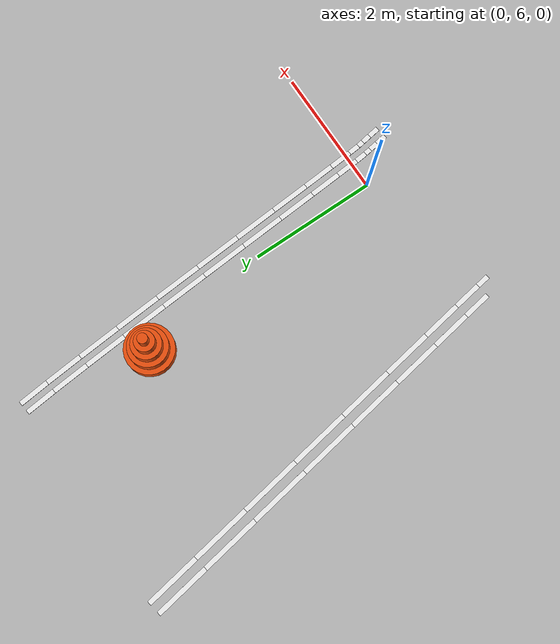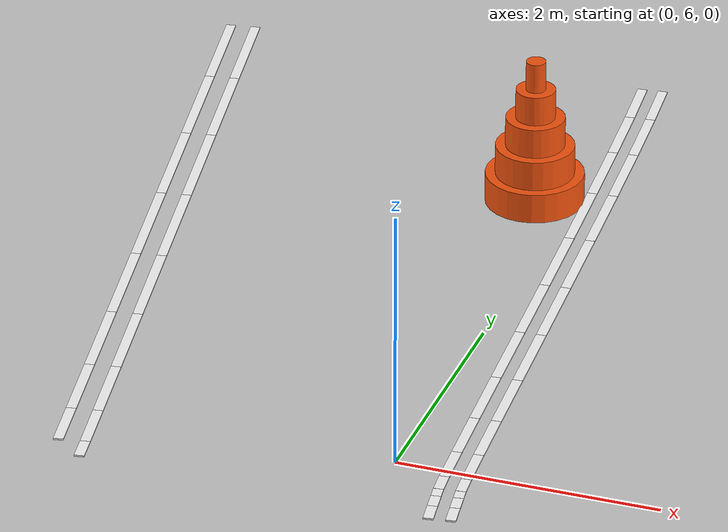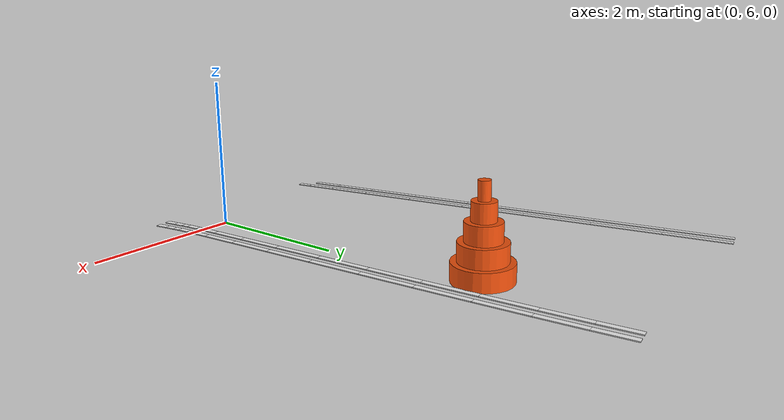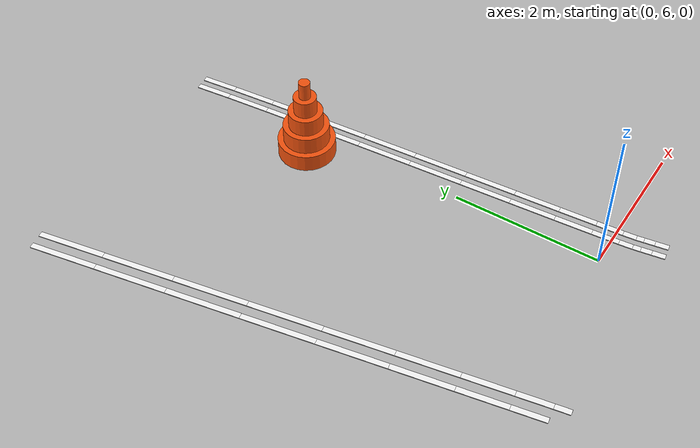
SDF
<sdf version="1.9">
 <world name="igvc_competition">
  <model name="Line_001_0176">
   <static>1</static>
   <pose>-3.2469 11.6573 0.011 0 0 -1.403442</pose>
   <link name="link">
    <visual name="visual">
     <geometry><box><size>0.9095 0.0762 0.012</size></box></geometry>
     <material>
      <ambient>0.98 0.98 0.98 1</ambient>
      <diffuse>0.98 0.98 0.98 1</diffuse>
      <specular>0.05 0.05 0.05 1</specular>
      <emissive>0.9 0.9 0.9 1</emissive>
     </material>
    </visual>
   </link>
  </model>
  <model name="Line_001_0177">
   <static>1</static>
   <pose>-3.4441 11.6240 0.011 0 0 -1.403334</pose>
   <link name="link">
    <visual name="visual">
     <geometry><box><size>0.9095 0.0762 0.012</size></box></geometry>
     <material>
      <ambient>0.98 0.98 0.98 1</ambient>
      <diffuse>0.98 0.98 0.98 1</diffuse>
      <specular>0.05 0.05 0.05 1</specular>
      <emissive>0.9 0.9 0.9 1</emissive>
     </material>
    </visual>
   </link>
  </model>
  <model name="Line_001_0178">
   <static>1</static>
   <pose>-3.0896 10.7271 0.011 0 0 -1.403107</pose>
   <link name="link">
    <visual name="visual">
     <geometry><box><size>0.9772 0.0762 0.012</size></box></geometry>
     <material>
      <ambient>0.98 0.98 0.98 1</ambient>
      <diffuse>0.98 0.98 0.98 1</diffuse>
      <specular>0.05 0.05 0.05 1</specular>
      <emissive>0.9 0.9 0.9 1</emissive>
     </material>
    </visual>
   </link>
  </model>
  <model name="Line_001_0179">
   <static>1</static>
   <pose>-3.2868 10.6938 0.011 0 0 -1.403124</pose>
   <link name="link">
    <visual name="visual">
     <geometry><box><size>0.9773 0.0762 0.012</size></box></geometry>
     <material>
      <ambient>0.98 0.98 0.98 1</ambient>
      <diffuse>0.98 0.98 0.98 1</diffuse>
      <specular>0.05 0.05 0.05 1</specular>
      <emissive>0.9 0.9 0.9 1</emissive>
     </material>
    </visual>
   </link>
  </model>
  <model name="Line_001_0180">
   <static>1</static>
   <pose>-2.9245 9.7522 0.011 0 0 -1.403002</pose>
   <link name="link">
    <visual name="visual">
     <geometry><box><size>1.0006 0.0762 0.012</size></box></geometry>
     <material>
      <ambient>0.98 0.98 0.98 1</ambient>
      <diffuse>0.98 0.98 0.98 1</diffuse>
      <specular>0.05 0.05 0.05 1</specular>
      <emissive>0.9 0.9 0.9 1</emissive>
     </material>
    </visual>
   </link>
  </model>
  <model name="Line_001_0181">
   <static>1</static>
   <pose>-3.1216 9.7188 0.011 0 0 -1.403002</pose>
   <link name="link">
    <visual name="visual">
     <geometry><box><size>1.0006 0.0762 0.012</size></box></geometry>
     <material>
      <ambient>0.98 0.98 0.98 1</ambient>
      <diffuse>0.98 0.98 0.98 1</diffuse>
      <specular>0.05 0.05 0.05 1</specular>
      <emissive>0.9 0.9 0.9 1</emissive>
     </material>
    </visual>
   </link>
  </model>
  <model name="Line_001_0182">
   <static>1</static>
   <pose>-2.7591 8.7761 0.011 0 0 -1.403063</pose>
   <link name="link">
    <visual name="visual">
     <geometry><box><size>0.9793 0.0762 0.012</size></box></geometry>
     <material>
      <ambient>0.98 0.98 0.98 1</ambient>
      <diffuse>0.98 0.98 0.98 1</diffuse>
      <specular>0.05 0.05 0.05 1</specular>
      <emissive>0.9 0.9 0.9 1</emissive>
     </material>
    </visual>
   </link>
  </model>
  <model name="Line_001_0183">
   <static>1</static>
   <pose>-2.9563 8.7427 0.011 0 0 -1.402962</pose>
   <link name="link">
    <visual name="visual">
     <geometry><box><size>0.9794 0.0762 0.012</size></box></geometry>
     <material>
      <ambient>0.98 0.98 0.98 1</ambient>
      <diffuse>0.98 0.98 0.98 1</diffuse>
      <specular>0.05 0.05 0.05 1</specular>
      <emissive>0.9 0.9 0.9 1</emissive>
     </material>
    </visual>
   </link>
  </model>
  <model name="Line_001_0184">
   <static>1</static>
   <pose>-2.6012 7.8430 0.011 0 0 -1.403074</pose>
   <link name="link">
    <visual name="visual">
     <geometry><box><size>0.9135 0.0762 0.012</size></box></geometry>
     <material>
      <ambient>0.98 0.98 0.98 1</ambient>
      <diffuse>0.98 0.98 0.98 1</diffuse>
      <specular>0.05 0.05 0.05 1</specular>
      <emissive>0.9 0.9 0.9 1</emissive>
     </material>
    </visual>
   </link>
  </model>
  <model name="Line_001_0185">
   <static>1</static>
   <pose>-2.7983 7.8095 0.011 0 0 -1.403182</pose>
   <link name="link">
    <visual name="visual">
     <geometry><box><size>0.9135 0.0762 0.012</size></box></geometry>
     <material>
      <ambient>0.98 0.98 0.98 1</ambient>
      <diffuse>0.98 0.98 0.98 1</diffuse>
      <specular>0.05 0.05 0.05 1</specular>
      <emissive>0.9 0.9 0.9 1</emissive>
     </material>
    </visual>
   </link>
  </model>
  <model name="Line_001_0186">
   <static>1</static>
   <pose>-2.4580 6.9966 0.011 0 0 -1.403458</pose>
   <link name="link">
    <visual name="visual">
     <geometry><box><size>0.8033 0.0762 0.012</size></box></geometry>
     <material>
      <ambient>0.98 0.98 0.98 1</ambient>
      <diffuse>0.98 0.98 0.98 1</diffuse>
      <specular>0.05 0.05 0.05 1</specular>
      <emissive>0.9 0.9 0.9 1</emissive>
     </material>
    </visual>
   </link>
  </model>
  <model name="Line_001_0187">
   <static>1</static>
   <pose>-2.6553 6.9632 0.011 0 0 -1.403560</pose>
   <link name="link">
    <visual name="visual">
     <geometry><box><size>0.8032 0.0762 0.012</size></box></geometry>
     <material>
      <ambient>0.98 0.98 0.98 1</ambient>
      <diffuse>0.98 0.98 0.98 1</diffuse>
      <specular>0.05 0.05 0.05 1</specular>
      <emissive>0.9 0.9 0.9 1</emissive>
     </material>
    </visual>
   </link>
  </model>
  <model name="Line_001_0188">
   <static>1</static>
   <pose>-2.3373 6.2806 0.011 0 0 -1.404304</pose>
   <link name="link">
    <visual name="visual">
     <geometry><box><size>0.6487 0.0762 0.012</size></box></geometry>
     <material>
      <ambient>0.98 0.98 0.98 1</ambient>
      <diffuse>0.98 0.98 0.98 1</diffuse>
      <specular>0.05 0.05 0.05 1</specular>
      <emissive>0.9 0.9 0.9 1</emissive>
     </material>
    </visual>
   </link>
  </model>
  <model name="Line_001_0189">
   <static>1</static>
   <pose>-2.5346 6.2475 0.011 0 0 -1.404076</pose>
   <link name="link">
    <visual name="visual">
     <geometry><box><size>0.6484 0.0762 0.012</size></box></geometry>
     <material>
      <ambient>0.98 0.98 0.98 1</ambient>
      <diffuse>0.98 0.98 0.98 1</diffuse>
      <specular>0.05 0.05 0.05 1</specular>
      <emissive>0.9 0.9 0.9 1</emissive>
     </material>
    </visual>
   </link>
  </model>
  <model name="Line_001_0190">
   <static>1</static>
   <pose>-2.2466 5.7390 0.011 0 0 -1.405684</pose>
   <link name="link">
    <visual name="visual">
     <geometry><box><size>0.4496 0.0762 0.012</size></box></geometry>
     <material>
      <ambient>0.98 0.98 0.98 1</ambient>
      <diffuse>0.98 0.98 0.98 1</diffuse>
      <specular>0.05 0.05 0.05 1</specular>
      <emissive>0.9 0.9 0.9 1</emissive>
     </material>
    </visual>
   </link>
  </model>
  <model name="Line_001_0191">
   <static>1</static>
   <pose>-2.4440 5.7065 0.011 0 0 -1.405831</pose>
   <link name="link">
    <visual name="visual">
     <geometry><box><size>0.4488 0.0762 0.012</size></box></geometry>
     <material>
      <ambient>0.98 0.98 0.98 1</ambient>
      <diffuse>0.98 0.98 0.98 1</diffuse>
      <specular>0.05 0.05 0.05 1</specular>
      <emissive>0.9 0.9 0.9 1</emissive>
     </material>
    </visual>
   </link>
  </model>
  <model name="Line_001_0192">
   <static>1</static>
   <pose>-2.1934 5.4154 0.011 0 0 -1.412256</pose>
   <link name="link">
    <visual name="visual">
     <geometry><box><size>0.2065 0.0762 0.012</size></box></geometry>
     <material>
      <ambient>0.98 0.98 0.98 1</ambient>
      <diffuse>0.98 0.98 0.98 1</diffuse>
      <specular>0.05 0.05 0.05 1</specular>
      <emissive>0.9 0.9 0.9 1</emissive>
     </material>
    </visual>
   </link>
  </model>
  <model name="Line_002_0172">
   <static>1</static>
   <pose>0.1388 11.8744 0.011 0 0 -1.472804</pose>
   <link name="link">
    <visual name="visual">
     <geometry><box><size>0.4927 0.0762 0.012</size></box></geometry>
     <material>
      <ambient>0.98 0.98 0.98 1</ambient>
      <diffuse>0.98 0.98 0.98 1</diffuse>
      <specular>0.05 0.05 0.05 1</specular>
      <emissive>0.9 0.9 0.9 1</emissive>
     </material>
    </visual>
   </link>
  </model>
  <model name="Line_002_0173">
   <static>1</static>
   <pose>-0.0237 11.8572 0.011 0 0 -1.472774</pose>
   <link name="link">
    <visual name="visual">
     <geometry><box><size>0.4894 0.0762 0.012</size></box></geometry>
     <material>
      <ambient>0.98 0.98 0.98 1</ambient>
      <diffuse>0.98 0.98 0.98 1</diffuse>
      <specular>0.05 0.05 0.05 1</specular>
      <emissive>0.9 0.9 0.9 1</emissive>
     </material>
    </visual>
   </link>
  </model>
  <model name="Line_002_0174">
   <static>1</static>
   <pose>0.1885 11.3260 0.011 0 0 -1.486769</pose>
   <link name="link">
    <visual name="visual">
     <geometry><box><size>0.6088 0.0762 0.012</size></box></geometry>
     <material>
      <ambient>0.98 0.98 0.98 1</ambient>
      <diffuse>0.98 0.98 0.98 1</diffuse>
      <specular>0.05 0.05 0.05 1</specular>
      <emissive>0.9 0.9 0.9 1</emissive>
     </material>
    </visual>
   </link>
  </model>
  <model name="Line_002_0175">
   <static>1</static>
   <pose>0.0258 11.3111 0.011 0 0 -1.486698</pose>
   <link name="link">
    <visual name="visual">
     <geometry><box><size>0.6071 0.0762 0.012</size></box></geometry>
     <material>
      <ambient>0.98 0.98 0.98 1</ambient>
      <diffuse>0.98 0.98 0.98 1</diffuse>
      <specular>0.05 0.05 0.05 1</specular>
      <emissive>0.9 0.9 0.9 1</emissive>
     </material>
    </visual>
   </link>
  </model>
  <model name="Line_002_0176">
   <static>1</static>
   <pose>0.2404 10.6774 0.011 0 0 -1.494479</pose>
   <link name="link">
    <visual name="visual">
     <geometry><box><size>0.6925 0.0762 0.012</size></box></geometry>
     <material>
      <ambient>0.98 0.98 0.98 1</ambient>
      <diffuse>0.98 0.98 0.98 1</diffuse>
      <specular>0.05 0.05 0.05 1</specular>
      <emissive>0.9 0.9 0.9 1</emissive>
     </material>
    </visual>
   </link>
  </model>
  <model name="Line_002_0177">
   <static>1</static>
   <pose>0.0776 10.6639 0.011 0 0 -1.494512</pose>
   <link name="link">
    <visual name="visual">
     <geometry><box><size>0.6915 0.0762 0.012</size></box></geometry>
     <material>
      <ambient>0.98 0.98 0.98 1</ambient>
      <diffuse>0.98 0.98 0.98 1</diffuse>
      <specular>0.05 0.05 0.05 1</specular>
      <emissive>0.9 0.9 0.9 1</emissive>
     </material>
    </visual>
   </link>
  </model>
  <model name="Line_002_0178">
   <static>1</static>
   <pose>0.2933 9.9614 0.011 0 0 -1.499431</pose>
   <link name="link">
    <visual name="visual">
     <geometry><box><size>0.7433 0.0762 0.012</size></box></geometry>
     <material>
      <ambient>0.98 0.98 0.98 1</ambient>
      <diffuse>0.98 0.98 0.98 1</diffuse>
      <specular>0.05 0.05 0.05 1</specular>
      <emissive>0.9 0.9 0.9 1</emissive>
     </material>
    </visual>
   </link>
  </model>
  <model name="Line_002_0179">
   <static>1</static>
   <pose>0.1305 9.9487 0.011 0 0 -1.499374</pose>
   <link name="link">
    <visual name="visual">
     <geometry><box><size>0.7427 0.0762 0.012</size></box></geometry>
     <material>
      <ambient>0.98 0.98 0.98 1</ambient>
      <diffuse>0.98 0.98 0.98 1</diffuse>
      <specular>0.05 0.05 0.05 1</specular>
      <emissive>0.9 0.9 0.9 1</emissive>
     </material>
    </visual>
   </link>
  </model>
  <model name="Line_002_0180">
   <static>1</static>
   <pose>0.3458 9.2110 0.011 0 0 -1.502559</pose>
   <link name="link">
    <visual name="visual">
     <geometry><box><size>0.7612 0.0762 0.012</size></box></geometry>
     <material>
      <ambient>0.98 0.98 0.98 1</ambient>
      <diffuse>0.98 0.98 0.98 1</diffuse>
      <specular>0.05 0.05 0.05 1</specular>
      <emissive>0.9 0.9 0.9 1</emissive>
     </material>
    </visual>
   </link>
  </model>
  <model name="Line_002_0181">
   <static>1</static>
   <pose>0.1830 9.1988 0.011 0 0 -1.502523</pose>
   <link name="link">
    <visual name="visual">
     <geometry><box><size>0.7608 0.0762 0.012</size></box></geometry>
     <material>
      <ambient>0.98 0.98 0.98 1</ambient>
      <diffuse>0.98 0.98 0.98 1</diffuse>
      <specular>0.05 0.05 0.05 1</specular>
      <emissive>0.9 0.9 0.9 1</emissive>
     </material>
    </visual>
   </link>
  </model>
  <model name="Line_002_0182">
   <static>1</static>
   <pose>0.3964 8.4591 0.011 0 0 -1.504398</pose>
   <link name="link">
    <visual name="visual">
     <geometry><box><size>0.7460 0.0762 0.012</size></box></geometry>
     <material>
      <ambient>0.98 0.98 0.98 1</ambient>
      <diffuse>0.98 0.98 0.98 1</diffuse>
      <specular>0.05 0.05 0.05 1</specular>
      <emissive>0.9 0.9 0.9 1</emissive>
     </material>
    </visual>
   </link>
  </model>
  <model name="Line_002_0183">
   <static>1</static>
   <pose>0.2336 8.4473 0.011 0 0 -1.504505</pose>
   <link name="link">
    <visual name="visual">
     <geometry><box><size>0.7457 0.0762 0.012</size></box></geometry>
     <material>
      <ambient>0.98 0.98 0.98 1</ambient>
      <diffuse>0.98 0.98 0.98 1</diffuse>
      <specular>0.05 0.05 0.05 1</specular>
      <emissive>0.9 0.9 0.9 1</emissive>
     </material>
    </visual>
   </link>
  </model>
  <model name="Line_002_0184">
   <static>1</static>
   <pose>0.4440 7.7387 0.011 0 0 -1.505410</pose>
   <link name="link">
    <visual name="visual">
     <geometry><box><size>0.6979 0.0762 0.012</size></box></geometry>
     <material>
      <ambient>0.98 0.98 0.98 1</ambient>
      <diffuse>0.98 0.98 0.98 1</diffuse>
      <specular>0.05 0.05 0.05 1</specular>
      <emissive>0.9 0.9 0.9 1</emissive>
     </material>
    </visual>
   </link>
  </model>
  <model name="Line_002_0185">
   <static>1</static>
   <pose>0.2811 7.7270 0.011 0 0 -1.505410</pose>
   <link name="link">
    <visual name="visual">
     <geometry><box><size>0.6979 0.0762 0.012</size></box></geometry>
     <material>
      <ambient>0.98 0.98 0.98 1</ambient>
      <diffuse>0.98 0.98 0.98 1</diffuse>
      <specular>0.05 0.05 0.05 1</specular>
      <emissive>0.9 0.9 0.9 1</emissive>
     </material>
    </visual>
   </link>
  </model>
  <model name="Line_002_0186">
   <static>1</static>
   <pose>0.4869 7.0829 0.011 0 0 -1.505393</pose>
   <link name="link">
    <visual name="visual">
     <geometry><box><size>0.6166 0.0762 0.012</size></box></geometry>
     <material>
      <ambient>0.98 0.98 0.98 1</ambient>
      <diffuse>0.98 0.98 0.98 1</diffuse>
      <specular>0.05 0.05 0.05 1</specular>
      <emissive>0.9 0.9 0.9 1</emissive>
     </material>
    </visual>
   </link>
  </model>
  <model name="Line_002_0187">
   <static>1</static>
   <pose>0.3241 7.0710 0.011 0 0 -1.505253</pose>
   <link name="link">
    <visual name="visual">
     <geometry><box><size>0.6168 0.0762 0.012</size></box></geometry>
     <material>
      <ambient>0.98 0.98 0.98 1</ambient>
      <diffuse>0.98 0.98 0.98 1</diffuse>
      <specular>0.05 0.05 0.05 1</specular>
      <emissive>0.9 0.9 0.9 1</emissive>
     </material>
    </visual>
   </link>
  </model>
  <model name="Line_002_0188">
   <static>1</static>
   <pose>0.5240 6.5246 0.011 0 0 -1.503460</pose>
   <link name="link">
    <visual name="visual">
     <geometry><box><size>0.5023 0.0762 0.012</size></box></geometry>
     <material>
      <ambient>0.98 0.98 0.98 1</ambient>
      <diffuse>0.98 0.98 0.98 1</diffuse>
      <specular>0.05 0.05 0.05 1</specular>
      <emissive>0.9 0.9 0.9 1</emissive>
     </material>
    </visual>
   </link>
  </model>
  <model name="Line_002_0189">
   <static>1</static>
   <pose>0.3612 6.5124 0.011 0 0 -1.503527</pose>
   <link name="link">
    <visual name="visual">
     <geometry><box><size>0.5028 0.0762 0.012</size></box></geometry>
     <material>
      <ambient>0.98 0.98 0.98 1</ambient>
      <diffuse>0.98 0.98 0.98 1</diffuse>
      <specular>0.05 0.05 0.05 1</specular>
      <emissive>0.9 0.9 0.9 1</emissive>
     </material>
    </visual>
   </link>
  </model>
  <model name="Line_002_0190">
   <static>1</static>
   <pose>0.5538 6.0972 0.011 0 0 -1.497941</pose>
   <link name="link">
    <visual name="visual">
     <geometry><box><size>0.3544 0.0762 0.012</size></box></geometry>
     <material>
      <ambient>0.98 0.98 0.98 1</ambient>
      <diffuse>0.98 0.98 0.98 1</diffuse>
      <specular>0.05 0.05 0.05 1</specular>
      <emissive>0.9 0.9 0.9 1</emissive>
     </material>
    </visual>
   </link>
  </model>
  <model name="Line_002_0191">
   <static>1</static>
   <pose>0.3911 6.0838 0.011 0 0 -1.498070</pose>
   <link name="link">
    <visual name="visual">
     <geometry><box><size>0.3564 0.0762 0.012</size></box></geometry>
     <material>
      <ambient>0.98 0.98 0.98 1</ambient>
      <diffuse>0.98 0.98 0.98 1</diffuse>
      <specular>0.05 0.05 0.05 1</specular>
      <emissive>0.9 0.9 0.9 1</emissive>
     </material>
    </visual>
   </link>
  </model>
  <model name="Line_002_0192">
   <static>1</static>
   <pose>0.5748 5.8347 0.011 0 0 -1.476615</pose>
   <link name="link">
    <visual name="visual">
     <geometry><box><size>0.1723 0.0762 0.012</size></box></geometry>
     <material>
      <ambient>0.98 0.98 0.98 1</ambient>
      <diffuse>0.98 0.98 0.98 1</diffuse>
      <specular>0.05 0.05 0.05 1</specular>
      <emissive>0.9 0.9 0.9 1</emissive>
     </material>
    </visual>
   </link>
  </model>
  <model name="Line_002_0193">
   <static>1</static>
   <pose>0.4124 5.8173 0.011 0 0 -1.475924</pose>
   <link name="link">
    <visual name="visual">
     <geometry><box><size>0.1784 0.0762 0.012</size></box></geometry>
     <material>
      <ambient>0.98 0.98 0.98 1</ambient>
      <diffuse>0.98 0.98 0.98 1</diffuse>
      <specular>0.05 0.05 0.05 1</specular>
      <emissive>0.9 0.9 0.9 1</emissive>
     </material>
    </visual>
   </link>
  </model>
  <model name="Line_002_0194">
   <static>1</static>
   <pose>0.5902 5.7013 0.011 0 0 -1.417911</pose>
   <link name="link">
    <visual name="visual">
     <geometry><box><size>0.0965 0.0762 0.012</size></box></geometry>
     <material>
      <ambient>0.98 0.98 0.98 1</ambient>
      <diffuse>0.98 0.98 0.98 1</diffuse>
      <specular>0.05 0.05 0.05 1</specular>
      <emissive>0.9 0.9 0.9 1</emissive>
     </material>
    </visual>
   </link>
  </model>
  <model name="Line_002_0195">
   <static>1</static>
   <pose>0.4285 5.6787 0.011 0 0 -1.419354</pose>
   <link name="link">
    <visual name="visual">
     <geometry><box><size>0.1008 0.0762 0.012</size></box></geometry>
     <material>
      <ambient>0.98 0.98 0.98 1</ambient>
      <diffuse>0.98 0.98 0.98 1</diffuse>
      <specular>0.05 0.05 0.05 1</specular>
      <emissive>0.9 0.9 0.9 1</emissive>
     </material>
    </visual>
   </link>
  </model>
  <model name="Line_002_0196">
   <static>1</static>
   <pose>0.6081 5.5839 0.011 0 0 -1.421275</pose>
   <link name="link">
    <visual name="visual">
     <geometry><box><size>0.1410 0.0762 0.012</size></box></geometry>
     <material>
      <ambient>0.98 0.98 0.98 1</ambient>
      <diffuse>0.98 0.98 0.98 1</diffuse>
      <specular>0.05 0.05 0.05 1</specular>
      <emissive>0.9 0.9 0.9 1</emissive>
     </material>
    </visual>
   </link>
  </model>
  <model name="Line_002_0197">
   <static>1</static>
   <pose>0.4466 5.5594 0.011 0 0 -1.420957</pose>
   <link name="link">
    <visual name="visual">
     <geometry><box><size>0.1407 0.0762 0.012</size></box></geometry>
     <material>
      <ambient>0.98 0.98 0.98 1</ambient>
      <diffuse>0.98 0.98 0.98 1</diffuse>
      <specular>0.05 0.05 0.05 1</specular>
      <emissive>0.9 0.9 0.9 1</emissive>
     </material>
    </visual>
   </link>
  </model>
  <model name="Line_002_0198">
   <static>1</static>
   <pose>0.6315 5.4284 0.011 0 0 -1.421650</pose>
   <link name="link">
    <visual name="visual">
     <geometry><box><size>0.1736 0.0762 0.012</size></box></geometry>
     <material>
      <ambient>0.98 0.98 0.98 1</ambient>
      <diffuse>0.98 0.98 0.98 1</diffuse>
      <specular>0.05 0.05 0.05 1</specular>
      <emissive>0.9 0.9 0.9 1</emissive>
     </material>
    </visual>
   </link>
  </model>
  <model name="Line_002_0199">
   <static>1</static>
   <pose>0.4700 5.4040 0.011 0 0 -1.421564</pose>
   <link name="link">
    <visual name="visual">
     <geometry><box><size>0.1735 0.0762 0.012</size></box></geometry>
     <material>
      <ambient>0.98 0.98 0.98 1</ambient>
      <diffuse>0.98 0.98 0.98 1</diffuse>
      <specular>0.05 0.05 0.05 1</specular>
      <emissive>0.9 0.9 0.9 1</emissive>
     </material>
    </visual>
   </link>
  </model>
  <model name="Cones_069">
   <static>1</static>
   <pose>-0.2961 10.1113 0 0 0 0</pose>
   <link name="link">
    <collision name="collision">
     <pose>0 0 0.5985 0 0 0</pose>
     <geometry><cylinder><radius>0.3849</radius><length>1.1969</length></cylinder></geometry>
    </collision>
    <visual name="visual_0">
     <pose>0 0 0.1197 0 0 0</pose>
     <geometry><cylinder><radius>0.3849</radius><length>0.2394</length></cylinder></geometry>
     <material>
      <ambient>0.95 0.32 0.05 1.0</ambient>
      <diffuse>0.95 0.32 0.05 1.0</diffuse>
      <specular>0.05 0.05 0.05 1</specular>
     </material>
    </visual>
    <visual name="visual_1">
     <pose>0 0 0.3591 0 0 0</pose>
     <geometry><cylinder><radius>0.3079</radius><length>0.2394</length></cylinder></geometry>
     <material>
      <ambient>0.95 0.32 0.05 1.0</ambient>
      <diffuse>0.95 0.32 0.05 1.0</diffuse>
      <specular>0.05 0.05 0.05 1</specular>
     </material>
    </visual>
    <visual name="visual_2">
     <pose>0 0 0.5985 0 0 0</pose>
     <geometry><cylinder><radius>0.2309</radius><length>0.2394</length></cylinder></geometry>
     <material>
      <ambient>0.95 0.32 0.05 1.0</ambient>
      <diffuse>0.95 0.32 0.05 1.0</diffuse>
      <specular>0.05 0.05 0.05 1</specular>
     </material>
    </visual>
    <visual name="visual_3">
     <pose>0 0 0.8378 0 0 0</pose>
     <geometry><cylinder><radius>0.1540</radius><length>0.2394</length></cylinder></geometry>
     <material>
      <ambient>0.95 0.32 0.05 1.0</ambient>
      <diffuse>0.95 0.32 0.05 1.0</diffuse>
      <specular>0.05 0.05 0.05 1</specular>
     </material>
    </visual>
    <visual name="visual_4">
     <pose>0 0 1.0772 0 0 0</pose>
     <geometry><cylinder><radius>0.0770</radius><length>0.2394</length></cylinder></geometry>
     <material>
      <ambient>0.95 0.32 0.05 1.0</ambient>
      <diffuse>0.95 0.32 0.05 1.0</diffuse>
      <specular>0.05 0.05 0.05 1</specular>
     </material>
    </visual>
   </link>
  </model>
 </world>
</sdf>
